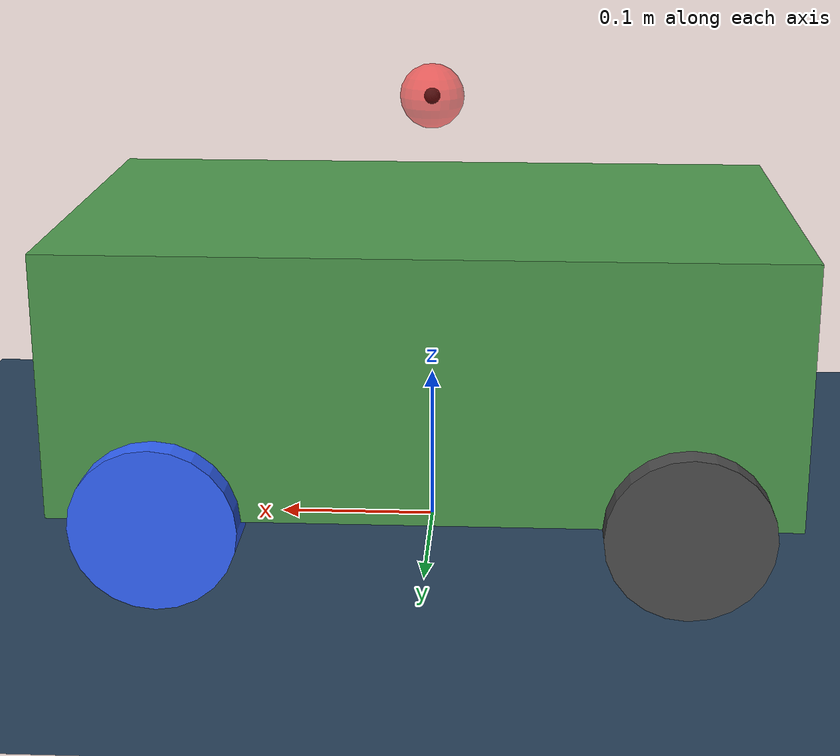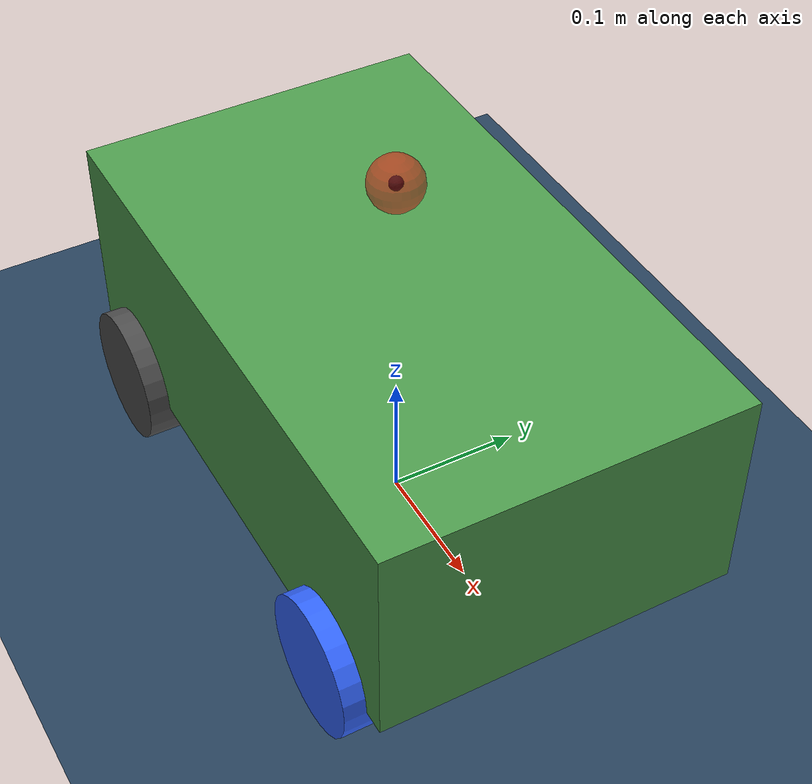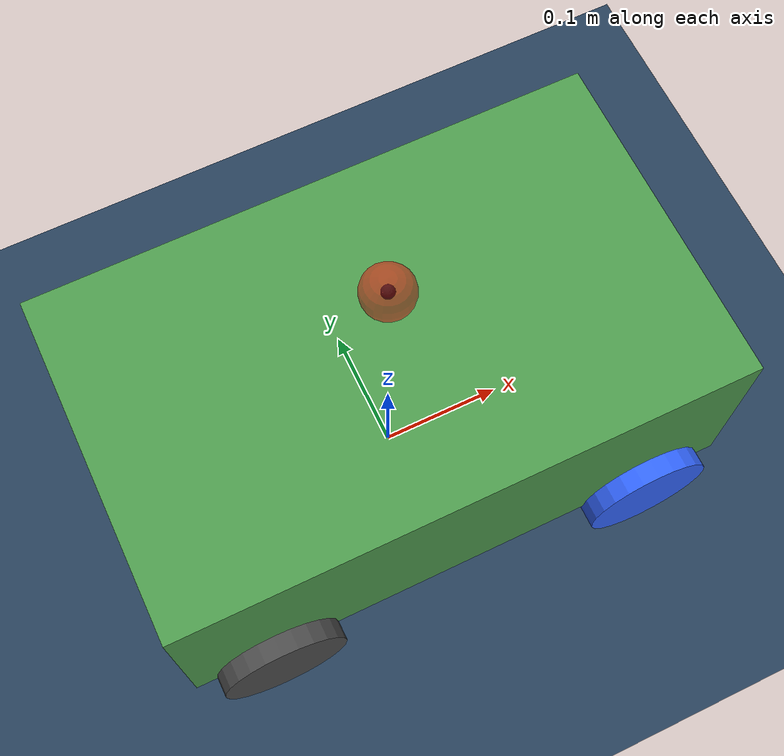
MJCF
<mujoco model="neoracer">

    <compiler angle="radian" autolimits="true"/>

    <asset>
        <texture name="grid" type="2d" builtin="checker" width="512" height="512"
                 rgb1=".1 .2 .3" rgb2=".2 .3 .4"/>
        <material name="grid" texture="grid" texrepeat="1 1" texuniform="true"
                  reflectance=".2"/>
    </asset>

    <default>
        <joint damping=".03" actuatorfrcrange="-3 3"/>

        <!--
        Wheel drive joint: hinge around Y-axis (axle direction).
        armature stabilises near-zero rotational inertia of a light RC wheel to
        prevent integrator blow-up.
        -->
        <default class="wheel">
            <joint type="hinge" axis="0 1 0" armature=".005" damping=".0005"/>
            <geom type="cylinder" size=".05 .02" zaxis="0 1 0"
                  friction="1.5 0.1 0.1" condim="3"/>
        </default>

        <default class="steer">
            <joint type="hinge" axis="0 0 1" limited="true" range="-.55 .55"
                   damping=".001" armature=".0002" frictionloss=".01"
                   actuatorfrcrange="-100 100"/>
        </default>

        <default class="susp">
            <joint type="slide" axis="0 0 1" range="-.010 .015"
                   stiffness="600" damping="25"/>
        </default>
    </default>

    <worldbody>
        <geom type="plane" size="5 5 .01" material="grid" friction="1.5 0.1 0.1"/>

        <body name="car" pos="0 0 .1306">
            <freejoint/>
            <light name="top_light" pos="0 0 2" mode="trackcom" diffuse=".4 .4 .4"/>

            <geom name="chassis" type="box" size=".223 .134 .0806"
                  rgba=".3 .6 .3 1" mass="2.0"/>

            <!-- IMU site. Placement is approximate; confirm against hardware PCB position. -->
            <site name="imu" pos="0 0 0" size=".01" rgba="1 1 0 1"/>

            <!--
            LiDAR mount site. RC-LIDAR-00 spinning lidar, mounted at the top of the stack.
            Height is approximate; confirm exact position from hardware CAD.
            -->
            <site name="lidar_mount" pos="0 0 .15" size=".02" rgba="1 0 0 .5"/>

            <site name="lidar_000" pos="0 0 .15" euler="0 90   0" size=".005"/>
            <site name="lidar_045" pos="0 0 .15" euler="0 90  45" size=".005"/>
            <site name="lidar_090" pos="0 0 .15" euler="0 90  90" size=".005"/>
            <site name="lidar_135" pos="0 0 .15" euler="0 90 135" size=".005"/>
            <site name="lidar_180" pos="0 0 .15" euler="0 90 180" size=".005"/>
            <site name="lidar_225" pos="0 0 .15" euler="0 90 225" size=".005"/>
            <site name="lidar_270" pos="0 0 .15" euler="0 90 270" size=".005"/>
            <site name="lidar_315" pos="0 0 .15" euler="0 90 315" size=".005"/>

            <body name="steer_input_body" pos=".156 0 .05">
                <joint name="steer_input" class="steer" range="-.45 .45"/>
                <geom type="cylinder" size=".02 .005" contype="0" conaffinity="0"
                      mass=".01" rgba="1 0 0 .3"/>
            </body>

            <body name="fl_wheel_body" pos=".156 .13 -.0806">
                <joint name="fl_susp"  class="susp"/>
                <joint name="fl_steer" class="steer"/>
                <joint name="fl_drive" class="wheel"/>
                <geom class="wheel" mass=".15" rgba=".2 .4 1 1"/>
            </body>

            <!-- FRONT RIGHT WHEEL — steerable + driven -->
            <body name="fr_wheel_body" pos=".156 -.13 -.0806">
                <joint name="fr_susp"  class="susp"/>
                <joint name="fr_steer" class="steer"/>
                <joint name="fr_drive" class="wheel"/>
                <geom class="wheel" mass=".15" rgba=".2 .4 1 1"/>
            </body>

            <!-- REAR LEFT WHEEL — driven only (no steer joint) -->
            <body name="rl_wheel_body" pos="-.156 .13 -.0806">
                <joint name="rl_susp"  class="susp"/>
                <joint name="rl_drive" class="wheel"/>
                <geom class="wheel" mass=".15" rgba=".3 .3 .3 1"/>
            </body>

            <!-- REAR RIGHT WHEEL — driven only -->
            <body name="rr_wheel_body" pos="-.156 -.13 -.0806">
                <joint name="rr_susp"  class="susp"/>
                <joint name="rr_drive" class="wheel"/>
                <geom class="wheel" mass=".15" rgba=".3 .3 .3 1"/>
            </body>

        </body>
    </worldbody>

    <actuator>
        <motor name="fl_motor" joint="fl_drive" gear="1" ctrlrange="-1 1"/>
        <motor name="fr_motor" joint="fr_drive" gear="1" ctrlrange="-1 1"/>
        <motor name="rl_motor" joint="rl_drive" gear="1" ctrlrange="-1 1"/>
        <motor name="rr_motor" joint="rr_drive" gear="1" ctrlrange="-1 1"/>

        <position name="steer_servo" joint="steer_input" kp="25" ctrlrange="-.4 .4"/>
    </actuator>

    <equality>
        <joint name="ackermann_left"
               joint1="fl_steer" joint2="steer_input"
               polycoef="0 1 0.41666667 0.17361111 -0.06655093"/>
        <joint name="ackermann_right"
               joint1="fr_steer" joint2="steer_input"
               polycoef="0 1 -0.41666667 0.17361111 0.06655093"/>
    </equality>

    <sensor>
        <!--
        IMU: accelerometer (m/s²), gyro (rad/s), orientation quaternion, world-frame velocity.
        -->
        <accelerometer name="imu_accel"  site="imu"/>
        <gyro          name="imu_gyro"   site="imu"/>
        <framequat     name="imu_quat"   objtype="site" objname="imu"/>
        <framelinvel   name="imu_linvel" objtype="site" objname="imu"/>

        <jointpos name="steer_cmd_pos" joint="steer_input"/>
        <jointpos name="fl_steer_pos"  joint="fl_steer"/>
        <jointpos name="fr_steer_pos"  joint="fr_steer"/>

        <!--
        Wheel angular velocity (rad/s). Multiply by 0.05 m for surface speed in m/s.
        Positive = forward rotation.
        -->
        <jointvel name="fl_wheel_vel" joint="fl_drive"/>
        <jointvel name="fr_wheel_vel" joint="fr_drive"/>
        <jointvel name="rl_wheel_vel" joint="rl_drive"/>
        <jointvel name="rr_wheel_vel" joint="rr_drive"/>

        <jointpos name="fl_susp_pos" joint="fl_susp"/>
        <jointpos name="fr_susp_pos" joint="fr_susp"/>
        <jointpos name="rl_susp_pos" joint="rl_susp"/>
        <jointpos name="rr_susp_pos" joint="rr_susp"/>

        <!--
        LiDAR: 8 rangefinder beams at 45-degree intervals.
        Returns distance to nearest geom (m), or -1 if no hit within cutoff.
        -->
        <rangefinder name="lidar_000" site="lidar_000"/>
        <rangefinder name="lidar_045" site="lidar_045"/>
        <rangefinder name="lidar_090" site="lidar_090"/>
        <rangefinder name="lidar_135" site="lidar_135"/>
        <rangefinder name="lidar_180" site="lidar_180"/>
        <rangefinder name="lidar_225" site="lidar_225"/>
        <rangefinder name="lidar_270" site="lidar_270"/>
        <rangefinder name="lidar_315" site="lidar_315"/>
    </sensor>

</mujoco>
